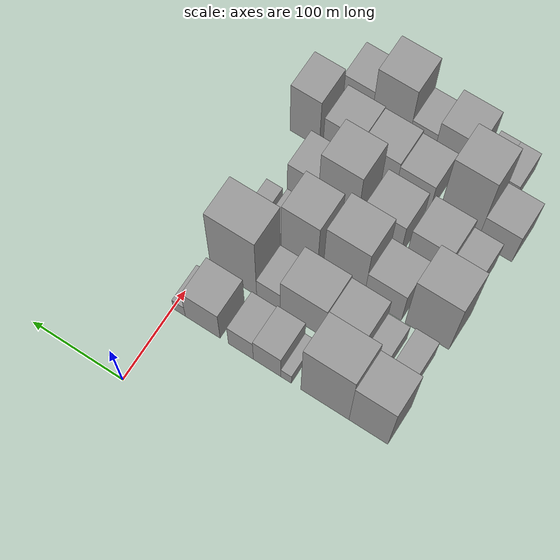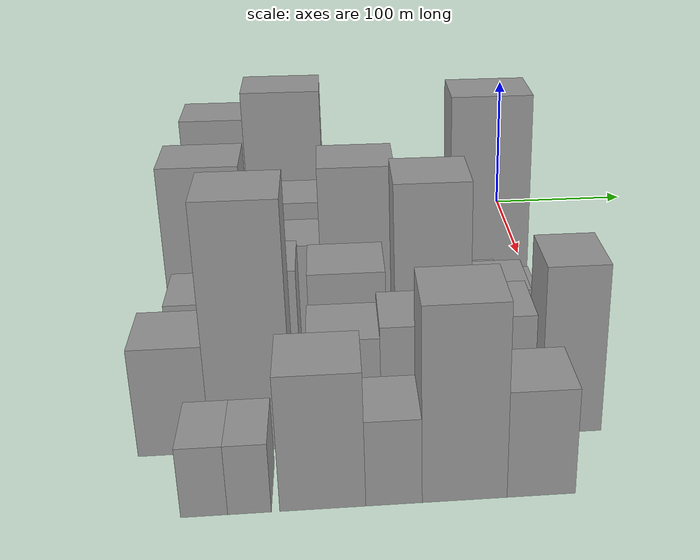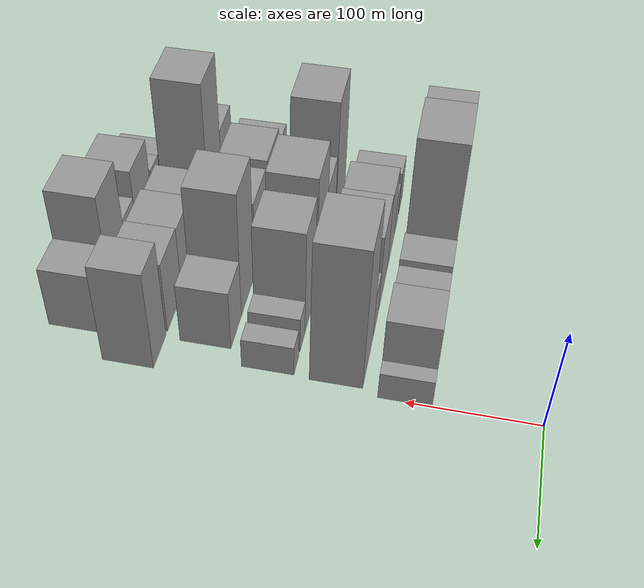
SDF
<sdf version="1.6">
 <world name="default">
  <model name="building_23">
   <static>1</static>
   <pose>100.0000 -210.4001 0 0.000000 0.000000 0.000000</pose>
   <link name="link">
    <pose>0 0 57.00 0 0 0</pose>
    <collision name="collision"><geometry><box><size>40.0000 40.6722 114.0000</size></box></geometry></collision>
    <visual name="visual">
     <cast_shadows>0</cast_shadows>
     <geometry><box><size>40.0000 40.6722 114.0000</size></box></geometry>
     <material>
      <script>
       <uri>model://grey_wall/materials/scripts</uri>
       <uri>model://grey_wall/materials/textures</uri>
       <name>vrc/grey_wall</name>
      </script>
     </material>
    </visual>
   </link>
  </model>
  <model name="building_24">
   <static>1</static>
   <pose>100.0000 -164.5461 0 0.000000 0.000000 0.000000</pose>
   <link name="link">
    <pose>0 0 66.00 0 0 0</pose>
    <collision name="collision"><geometry><box><size>40.0000 51.0359 132.0000</size></box></geometry></collision>
    <visual name="visual">
     <cast_shadows>0</cast_shadows>
     <geometry><box><size>40.0000 51.0359 132.0000</size></box></geometry>
     <material>
      <script>
       <uri>model://grey_wall/materials/scripts</uri>
       <uri>model://grey_wall/materials/textures</uri>
       <name>vrc/grey_wall</name>
      </script>
     </material>
    </visual>
   </link>
  </model>
  <model name="building_25">
   <static>1</static>
   <pose>100.0000 -123.3570 0 0.000000 0.000000 0.000000</pose>
   <link name="link">
    <pose>0 0 12.00 0 0 0</pose>
    <collision name="collision"><geometry><box><size>40.0000 11.3422 24.0000</size></box></geometry></collision>
    <visual name="visual">
     <cast_shadows>0</cast_shadows>
     <geometry><box><size>40.0000 11.3422 24.0000</size></box></geometry>
     <material>
      <script>
       <uri>model://grey_wall/materials/scripts</uri>
       <uri>model://grey_wall/materials/textures</uri>
       <name>vrc/grey_wall</name>
      </script>
     </material>
    </visual>
   </link>
  </model>
  <model name="building_26">
   <static>1</static>
   <pose>100.0000 -102.9204 0 0.000000 0.000000 0.000000</pose>
   <link name="link">
    <pose>0 0 28.50 0 0 0</pose>
    <collision name="collision"><geometry><box><size>40.0000 29.5310 57.0000</size></box></geometry></collision>
    <visual name="visual">
     <cast_shadows>0</cast_shadows>
     <geometry><box><size>40.0000 29.5310 57.0000</size></box></geometry>
     <material>
      <script>
       <uri>model://grey_wall/materials/scripts</uri>
       <uri>model://grey_wall/materials/textures</uri>
       <name>vrc/grey_wall</name>
      </script>
     </material>
    </visual>
   </link>
  </model>
  <model name="building_27">
   <static>1</static>
   <pose>100.0000 -74.5961 0 0.000000 0.000000 0.000000</pose>
   <link name="link">
    <pose>0 0 25.50 0 0 0</pose>
    <collision name="collision"><geometry><box><size>40.0000 27.1176 51.0000</size></box></geometry></collision>
    <visual name="visual">
     <cast_shadows>0</cast_shadows>
     <geometry><box><size>40.0000 27.1176 51.0000</size></box></geometry>
     <material>
      <script>
       <uri>model://grey_wall/materials/scripts</uri>
       <uri>model://grey_wall/materials/textures</uri>
       <name>vrc/grey_wall</name>
      </script>
     </material>
    </visual>
   </link>
  </model>
  <model name="building_28">
   <static>1</static>
   <pose>100.0000 -32.9300 0 0.000000 0.000000 0.000000</pose>
   <link name="link">
    <pose>0 0 34.50 0 0 0</pose>
    <collision name="collision"><geometry><box><size>40.0000 38.2145 69.0000</size></box></geometry></collision>
    <visual name="visual">
     <cast_shadows>0</cast_shadows>
     <geometry><box><size>40.0000 38.2145 69.0000</size></box></geometry>
     <material>
      <script>
       <uri>model://grey_wall/materials/scripts</uri>
       <uri>model://grey_wall/materials/textures</uri>
       <name>vrc/grey_wall</name>
      </script>
     </material>
    </visual>
   </link>
  </model>
  <model name="building_29">
   <static>1</static>
   <pose>100.0000 -7.2792 0 0.000000 0.000000 0.000000</pose>
   <link name="link">
    <pose>0 0 13.50 0 0 0</pose>
    <collision name="collision"><geometry><box><size>40.0000 13.0871 27.0000</size></box></geometry></collision>
    <visual name="visual">
     <cast_shadows>0</cast_shadows>
     <geometry><box><size>40.0000 13.0871 27.0000</size></box></geometry>
     <material>
      <script>
       <uri>model://grey_wall/materials/scripts</uri>
       <uri>model://grey_wall/materials/textures</uri>
       <name>vrc/grey_wall</name>
      </script>
     </material>
    </visual>
   </link>
  </model>
  <model name="building_71">
   <static>1</static>
   <pose>152.0000 -211.8616 0 0.000000 0.000000 0.000000</pose>
   <link name="link">
    <pose>0 0 22.50 0 0 0</pose>
    <collision name="collision"><geometry><box><size>40.0000 24.3873 45.0000</size></box></geometry></collision>
    <visual name="visual">
     <cast_shadows>0</cast_shadows>
     <geometry><box><size>40.0000 24.3873 45.0000</size></box></geometry>
     <material>
      <script>
       <uri>model://grey_wall/materials/scripts</uri>
       <uri>model://grey_wall/materials/textures</uri>
       <name>vrc/grey_wall</name>
      </script>
     </material>
    </visual>
   </link>
  </model>
  <model name="building_72">
   <static>1</static>
   <pose>152.0000 -183.2617 0 0.000000 0.000000 0.000000</pose>
   <link name="link">
    <pose>0 0 19.50 0 0 0</pose>
    <collision name="collision"><geometry><box><size>40.0000 22.8126 39.0000</size></box></geometry></collision>
    <visual name="visual">
     <cast_shadows>0</cast_shadows>
     <geometry><box><size>40.0000 22.8126 39.0000</size></box></geometry>
     <material>
      <script>
       <uri>model://grey_wall/materials/scripts</uri>
       <uri>model://grey_wall/materials/textures</uri>
       <name>vrc/grey_wall</name>
      </script>
     </material>
    </visual>
   </link>
  </model>
  <model name="building_73">
   <static>1</static>
   <pose>152.0000 -151.7934 0 0.000000 0.000000 0.000000</pose>
   <link name="link">
    <pose>0 0 37.50 0 0 0</pose>
    <collision name="collision"><geometry><box><size>40.0000 40.1239 75.0000</size></box></geometry></collision>
    <visual name="visual">
     <cast_shadows>0</cast_shadows>
     <geometry><box><size>40.0000 40.1239 75.0000</size></box></geometry>
     <material>
      <script>
       <uri>model://grey_wall/materials/scripts</uri>
       <uri>model://grey_wall/materials/textures</uri>
       <name>vrc/grey_wall</name>
      </script>
     </material>
    </visual>
   </link>
  </model>
  <model name="building_74">
   <static>1</static>
   <pose>152.0000 -107.4669 0 0.000000 0.000000 0.000000</pose>
   <link name="link">
    <pose>0 0 40.50 0 0 0</pose>
    <collision name="collision"><geometry><box><size>40.0000 48.5291 81.0000</size></box></geometry></collision>
    <visual name="visual">
     <cast_shadows>0</cast_shadows>
     <geometry><box><size>40.0000 48.5291 81.0000</size></box></geometry>
     <material>
      <script>
       <uri>model://grey_wall/materials/scripts</uri>
       <uri>model://grey_wall/materials/textures</uri>
       <name>vrc/grey_wall</name>
      </script>
     </material>
    </visual>
   </link>
  </model>
  <model name="building_75">
   <static>1</static>
   <pose>152.0000 -70.3819 0 0.000000 0.000000 0.000000</pose>
   <link name="link">
    <pose>0 0 22.50 0 0 0</pose>
    <collision name="collision"><geometry><box><size>40.0000 25.6409 45.0000</size></box></geometry></collision>
    <visual name="visual">
     <cast_shadows>0</cast_shadows>
     <geometry><box><size>40.0000 25.6409 45.0000</size></box></geometry>
     <material>
      <script>
       <uri>model://grey_wall/materials/scripts</uri>
       <uri>model://grey_wall/materials/textures</uri>
       <name>vrc/grey_wall</name>
      </script>
     </material>
    </visual>
   </link>
  </model>
  <model name="building_76">
   <static>1</static>
   <pose>152.0000 -32.1716 0 0.000000 0.000000 0.000000</pose>
   <link name="link">
    <pose>0 0 70.50 0 0 0</pose>
    <collision name="collision"><geometry><box><size>40.0000 50.7798 141.0000</size></box></geometry></collision>
    <visual name="visual">
     <cast_shadows>0</cast_shadows>
     <geometry><box><size>40.0000 50.7798 141.0000</size></box></geometry>
     <material>
      <script>
       <uri>model://grey_wall/materials/scripts</uri>
       <uri>model://grey_wall/materials/textures</uri>
       <name>vrc/grey_wall</name>
      </script>
     </material>
    </visual>
   </link>
  </model>
  <model name="building_119">
   <static>1</static>
   <pose>204.0000 -208.6191 0 0.000000 0.000000 0.000000</pose>
   <link name="link">
    <pose>0 0 60.00 0 0 0</pose>
    <collision name="collision"><geometry><box><size>40.0000 46.5056 120.0000</size></box></geometry></collision>
    <visual name="visual">
     <cast_shadows>0</cast_shadows>
     <geometry><box><size>40.0000 46.5056 120.0000</size></box></geometry>
     <material>
      <script>
       <uri>model://grey_wall/materials/scripts</uri>
       <uri>model://grey_wall/materials/textures</uri>
       <name>vrc/grey_wall</name>
      </script>
     </material>
    </visual>
   </link>
  </model>
  <model name="building_120">
   <static>1</static>
   <pose>204.0000 -161.3106 0 0.000000 0.000000 0.000000</pose>
   <link name="link">
    <pose>0 0 34.50 0 0 0</pose>
    <collision name="collision"><geometry><box><size>40.0000 40.1116 69.0000</size></box></geometry></collision>
    <visual name="visual">
     <cast_shadows>0</cast_shadows>
     <geometry><box><size>40.0000 40.1116 69.0000</size></box></geometry>
     <material>
      <script>
       <uri>model://grey_wall/materials/scripts</uri>
       <uri>model://grey_wall/materials/textures</uri>
       <name>vrc/grey_wall</name>
      </script>
     </material>
    </visual>
   </link>
  </model>
  <model name="building_121">
   <static>1</static>
   <pose>204.0000 -118.8850 0 0.000000 0.000000 0.000000</pose>
   <link name="link">
    <pose>0 0 58.50 0 0 0</pose>
    <collision name="collision"><geometry><box><size>40.0000 44.7396 117.0000</size></box></geometry></collision>
    <visual name="visual">
     <cast_shadows>0</cast_shadows>
     <geometry><box><size>40.0000 44.7396 117.0000</size></box></geometry>
     <material>
      <script>
       <uri>model://grey_wall/materials/scripts</uri>
       <uri>model://grey_wall/materials/textures</uri>
       <name>vrc/grey_wall</name>
      </script>
     </material>
    </visual>
   </link>
  </model>
  <model name="building_122">
   <static>1</static>
   <pose>204.0000 -70.5329 0 0.000000 0.000000 0.000000</pose>
   <link name="link">
    <pose>0 0 52.50 0 0 0</pose>
    <collision name="collision"><geometry><box><size>40.0000 39.9645 105.0000</size></box></geometry></collision>
    <visual name="visual">
     <cast_shadows>0</cast_shadows>
     <geometry><box><size>40.0000 39.9645 105.0000</size></box></geometry>
     <material>
      <script>
       <uri>model://grey_wall/materials/scripts</uri>
       <uri>model://grey_wall/materials/textures</uri>
       <name>vrc/grey_wall</name>
      </script>
     </material>
    </visual>
   </link>
  </model>
  <model name="building_123">
   <static>1</static>
   <pose>204.0000 -40.9830 0 0.000000 0.000000 0.000000</pose>
   <link name="link">
    <pose>0 0 18.00 0 0 0</pose>
    <collision name="collision"><geometry><box><size>40.0000 19.1354 36.0000</size></box></geometry></collision>
    <visual name="visual">
     <cast_shadows>0</cast_shadows>
     <geometry><box><size>40.0000 19.1354 36.0000</size></box></geometry>
     <material>
      <script>
       <uri>model://grey_wall/materials/scripts</uri>
       <uri>model://grey_wall/materials/textures</uri>
       <name>vrc/grey_wall</name>
      </script>
     </material>
    </visual>
   </link>
  </model>
  <model name="building_124">
   <static>1</static>
   <pose>204.0000 -17.5441 0 0.000000 0.000000 0.000000</pose>
   <link name="link">
    <pose>0 0 15.00 0 0 0</pose>
    <collision name="collision"><geometry><box><size>40.0000 17.7423 30.0000</size></box></geometry></collision>
    <visual name="visual">
     <cast_shadows>0</cast_shadows>
     <geometry><box><size>40.0000 17.7423 30.0000</size></box></geometry>
     <material>
      <script>
       <uri>model://grey_wall/materials/scripts</uri>
       <uri>model://grey_wall/materials/textures</uri>
       <name>vrc/grey_wall</name>
      </script>
     </material>
    </visual>
   </link>
  </model>
  <model name="building_166">
   <static>1</static>
   <pose>256.0000 -211.4674 0 0.000000 0.000000 0.000000</pose>
   <link name="link">
    <pose>0 0 30.00 0 0 0</pose>
    <collision name="collision"><geometry><box><size>40.0000 30.0251 60.0000</size></box></geometry></collision>
    <visual name="visual">
     <cast_shadows>0</cast_shadows>
     <geometry><box><size>40.0000 30.0251 60.0000</size></box></geometry>
     <material>
      <script>
       <uri>model://grey_wall/materials/scripts</uri>
       <uri>model://grey_wall/materials/textures</uri>
       <name>vrc/grey_wall</name>
      </script>
     </material>
    </visual>
   </link>
  </model>
  <model name="building_167">
   <static>1</static>
   <pose>256.0000 -175.3302 0 0.000000 0.000000 0.000000</pose>
   <link name="link">
    <pose>0 0 39.00 0 0 0</pose>
    <collision name="collision"><geometry><box><size>40.0000 42.2492 78.0000</size></box></geometry></collision>
    <visual name="visual">
     <cast_shadows>0</cast_shadows>
     <geometry><box><size>40.0000 42.2492 78.0000</size></box></geometry>
     <material>
      <script>
       <uri>model://grey_wall/materials/scripts</uri>
       <uri>model://grey_wall/materials/textures</uri>
       <name>vrc/grey_wall</name>
      </script>
     </material>
    </visual>
   </link>
  </model>
  <model name="building_168">
   <static>1</static>
   <pose>256.0000 -126.8129 0 0.000000 0.000000 0.000000</pose>
   <link name="link">
    <pose>0 0 37.50 0 0 0</pose>
    <collision name="collision"><geometry><box><size>40.0000 42.7853 75.0000</size></box></geometry></collision>
    <visual name="visual">
     <cast_shadows>0</cast_shadows>
     <geometry><box><size>40.0000 42.7853 75.0000</size></box></geometry>
     <material>
      <script>
       <uri>model://grey_wall/materials/scripts</uri>
       <uri>model://grey_wall/materials/textures</uri>
       <name>vrc/grey_wall</name>
      </script>
     </material>
    </visual>
   </link>
  </model>
  <model name="building_169">
   <static>1</static>
   <pose>256.0000 -79.0604 0 0.000000 0.000000 0.000000</pose>
   <link name="link">
    <pose>0 0 63.00 0 0 0</pose>
    <collision name="collision"><geometry><box><size>40.0000 42.7198 126.0000</size></box></geometry></collision>
    <visual name="visual">
     <cast_shadows>0</cast_shadows>
     <geometry><box><size>40.0000 42.7198 126.0000</size></box></geometry>
     <material>
      <script>
       <uri>model://grey_wall/materials/scripts</uri>
       <uri>model://grey_wall/materials/textures</uri>
       <name>vrc/grey_wall</name>
      </script>
     </material>
    </visual>
   </link>
  </model>
  <model name="building_170">
   <static>1</static>
   <pose>256.0000 -40.7276 0 0.000000 0.000000 0.000000</pose>
   <link name="link">
    <pose>0 0 30.00 0 0 0</pose>
    <collision name="collision"><geometry><box><size>40.0000 33.9458 60.0000</size></box></geometry></collision>
    <visual name="visual">
     <cast_shadows>0</cast_shadows>
     <geometry><box><size>40.0000 33.9458 60.0000</size></box></geometry>
     <material>
      <script>
       <uri>model://grey_wall/materials/scripts</uri>
       <uri>model://grey_wall/materials/textures</uri>
       <name>vrc/grey_wall</name>
      </script>
     </material>
    </visual>
   </link>
  </model>
  <model name="building_214">
   <static>1</static>
   <pose>308.0000 -219.4188 0 0.000000 0.000000 0.000000</pose>
   <link name="link">
    <pose>0 0 31.50 0 0 0</pose>
    <collision name="collision"><geometry><box><size>40.0000 37.1027 63.0000</size></box></geometry></collision>
    <visual name="visual">
     <cast_shadows>0</cast_shadows>
     <geometry><box><size>40.0000 37.1027 63.0000</size></box></geometry>
     <material>
      <script>
       <uri>model://grey_wall/materials/scripts</uri>
       <uri>model://grey_wall/materials/textures</uri>
       <name>vrc/grey_wall</name>
      </script>
     </material>
    </visual>
   </link>
  </model>
  <model name="building_215">
   <static>1</static>
   <pose>308.0000 -179.3333 0 0.000000 0.000000 0.000000</pose>
   <link name="link">
    <pose>0 0 70.50 0 0 0</pose>
    <collision name="collision"><geometry><box><size>40.0000 43.0682 141.0000</size></box></geometry></collision>
    <visual name="visual">
     <cast_shadows>0</cast_shadows>
     <geometry><box><size>40.0000 43.0682 141.0000</size></box></geometry>
     <material>
      <script>
       <uri>model://grey_wall/materials/scripts</uri>
       <uri>model://grey_wall/materials/textures</uri>
       <name>vrc/grey_wall</name>
      </script>
     </material>
    </visual>
   </link>
  </model>
  <model name="building_216">
   <static>1</static>
   <pose>308.0000 -130.0820 0 0.000000 0.000000 0.000000</pose>
   <link name="link">
    <pose>0 0 31.50 0 0 0</pose>
    <collision name="collision"><geometry><box><size>40.0000 37.4346 63.0000</size></box></geometry></collision>
    <visual name="visual">
     <cast_shadows>0</cast_shadows>
     <geometry><box><size>40.0000 37.4346 63.0000</size></box></geometry>
     <material>
      <script>
       <uri>model://grey_wall/materials/scripts</uri>
       <uri>model://grey_wall/materials/textures</uri>
       <name>vrc/grey_wall</name>
      </script>
     </material>
    </visual>
   </link>
  </model>
  <model name="building_217">
   <static>1</static>
   <pose>308.0000 -91.0264 0 0.000000 0.000000 0.000000</pose>
   <link name="link">
    <pose>0 0 34.50 0 0 0</pose>
    <collision name="collision"><geometry><box><size>40.0000 40.6766 69.0000</size></box></geometry></collision>
    <visual name="visual">
     <cast_shadows>0</cast_shadows>
     <geometry><box><size>40.0000 40.6766 69.0000</size></box></geometry>
     <material>
      <script>
       <uri>model://grey_wall/materials/scripts</uri>
       <uri>model://grey_wall/materials/textures</uri>
       <name>vrc/grey_wall</name>
      </script>
     </material>
    </visual>
   </link>
  </model>
  <model name="building_218">
   <static>1</static>
   <pose>308.0000 -50.5544 0 0.000000 0.000000 0.000000</pose>
   <link name="link">
    <pose>0 0 36.00 0 0 0</pose>
    <collision name="collision"><geometry><box><size>40.0000 40.2673 72.0000</size></box></geometry></collision>
    <visual name="visual">
     <cast_shadows>0</cast_shadows>
     <geometry><box><size>40.0000 40.2673 72.0000</size></box></geometry>
     <material>
      <script>
       <uri>model://grey_wall/materials/scripts</uri>
       <uri>model://grey_wall/materials/textures</uri>
       <name>vrc/grey_wall</name>
      </script>
     </material>
    </visual>
   </link>
  </model>
  <model name="building_219">
   <static>1</static>
   <pose>308.0000 -9.9071 0 0.000000 0.000000 0.000000</pose>
   <link name="link">
    <pose>0 0 49.50 0 0 0</pose>
    <collision name="collision"><geometry><box><size>40.0000 33.0273 99.0000</size></box></geometry></collision>
    <visual name="visual">
     <cast_shadows>0</cast_shadows>
     <geometry><box><size>40.0000 33.0273 99.0000</size></box></geometry>
     <material>
      <script>
       <uri>model://grey_wall/materials/scripts</uri>
       <uri>model://grey_wall/materials/textures</uri>
       <name>vrc/grey_wall</name>
      </script>
     </material>
    </visual>
   </link>
  </model>
  <model name="building_257">
   <static>1</static>
   <pose>360.0000 -199.3492 0 0.000000 0.000000 0.000000</pose>
   <link name="link">
    <pose>0 0 19.50 0 0 0</pose>
    <collision name="collision"><geometry><box><size>40.0000 22.2117 39.0000</size></box></geometry></collision>
    <visual name="visual">
     <cast_shadows>0</cast_shadows>
     <geometry><box><size>40.0000 22.2117 39.0000</size></box></geometry>
     <material>
      <script>
       <uri>model://grey_wall/materials/scripts</uri>
       <uri>model://grey_wall/materials/textures</uri>
       <name>vrc/grey_wall</name>
      </script>
     </material>
    </visual>
   </link>
  </model>
  <model name="building_258">
   <static>1</static>
   <pose>360.0000 -177.8552 0 0.000000 0.000000 0.000000</pose>
   <link name="link">
    <pose>0 0 19.50 0 0 0</pose>
    <collision name="collision"><geometry><box><size>40.0000 20.7763 39.0000</size></box></geometry></collision>
    <visual name="visual">
     <cast_shadows>0</cast_shadows>
     <geometry><box><size>40.0000 20.7763 39.0000</size></box></geometry>
     <material>
      <script>
       <uri>model://grey_wall/materials/scripts</uri>
       <uri>model://grey_wall/materials/textures</uri>
       <name>vrc/grey_wall</name>
      </script>
     </material>
    </visual>
   </link>
  </model>
  <model name="building_259">
   <static>1</static>
   <pose>360.0000 -142.7580 0 0.000000 0.000000 0.000000</pose>
   <link name="link">
    <pose>0 0 37.50 0 0 0</pose>
    <collision name="collision"><geometry><box><size>40.0000 41.4183 75.0000</size></box></geometry></collision>
    <visual name="visual">
     <cast_shadows>0</cast_shadows>
     <geometry><box><size>40.0000 41.4183 75.0000</size></box></geometry>
     <material>
      <script>
       <uri>model://grey_wall/materials/scripts</uri>
       <uri>model://grey_wall/materials/textures</uri>
       <name>vrc/grey_wall</name>
      </script>
     </material>
    </visual>
   </link>
  </model>
  <model name="building_260">
   <static>1</static>
   <pose>360.0000 -108.3296 0 0.000000 0.000000 0.000000</pose>
   <link name="link">
    <pose>0 0 24.00 0 0 0</pose>
    <collision name="collision"><geometry><box><size>40.0000 27.4385 48.0000</size></box></geometry></collision>
    <visual name="visual">
     <cast_shadows>0</cast_shadows>
     <geometry><box><size>40.0000 27.4385 48.0000</size></box></geometry>
     <material>
      <script>
       <uri>model://grey_wall/materials/scripts</uri>
       <uri>model://grey_wall/materials/textures</uri>
       <name>vrc/grey_wall</name>
      </script>
     </material>
    </visual>
   </link>
  </model>
  <model name="building_261">
   <static>1</static>
   <pose>360.0000 -73.7433 0 0.000000 0.000000 0.000000</pose>
   <link name="link">
    <pose>0 0 54.00 0 0 0</pose>
    <collision name="collision"><geometry><box><size>40.0000 41.7339 108.0000</size></box></geometry></collision>
    <visual name="visual">
     <cast_shadows>0</cast_shadows>
     <geometry><box><size>40.0000 41.7339 108.0000</size></box></geometry>
     <material>
      <script>
       <uri>model://grey_wall/materials/scripts</uri>
       <uri>model://grey_wall/materials/textures</uri>
       <name>vrc/grey_wall</name>
      </script>
     </material>
    </visual>
   </link>
  </model>
  <model name="building_262">
   <static>1</static>
   <pose>360.0000 -35.8513 0 0.000000 0.000000 0.000000</pose>
   <link name="link">
    <pose>0 0 30.00 0 0 0</pose>
    <collision name="collision"><geometry><box><size>40.0000 34.0502 60.0000</size></box></geometry></collision>
    <visual name="visual">
     <cast_shadows>0</cast_shadows>
     <geometry><box><size>40.0000 34.0502 60.0000</size></box></geometry>
     <material>
      <script>
       <uri>model://grey_wall/materials/scripts</uri>
       <uri>model://grey_wall/materials/textures</uri>
       <name>vrc/grey_wall</name>
      </script>
     </material>
    </visual>
   </link>
  </model>
 </world>
</sdf>
